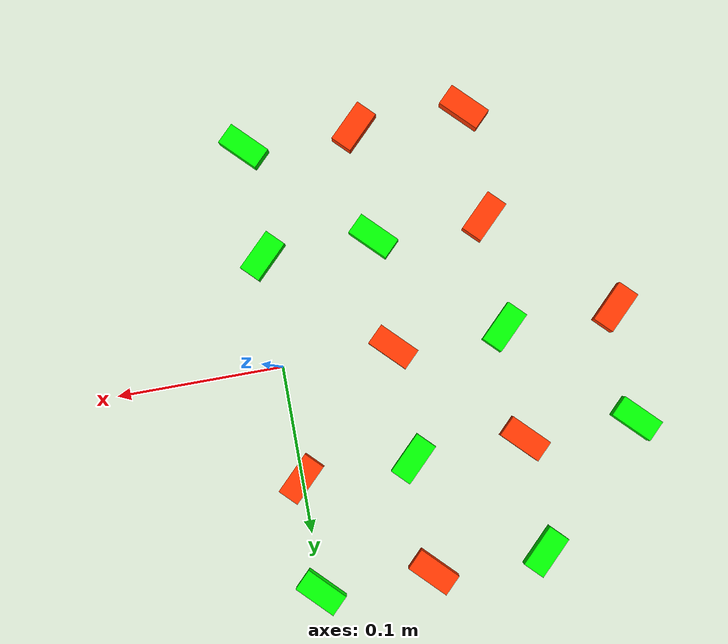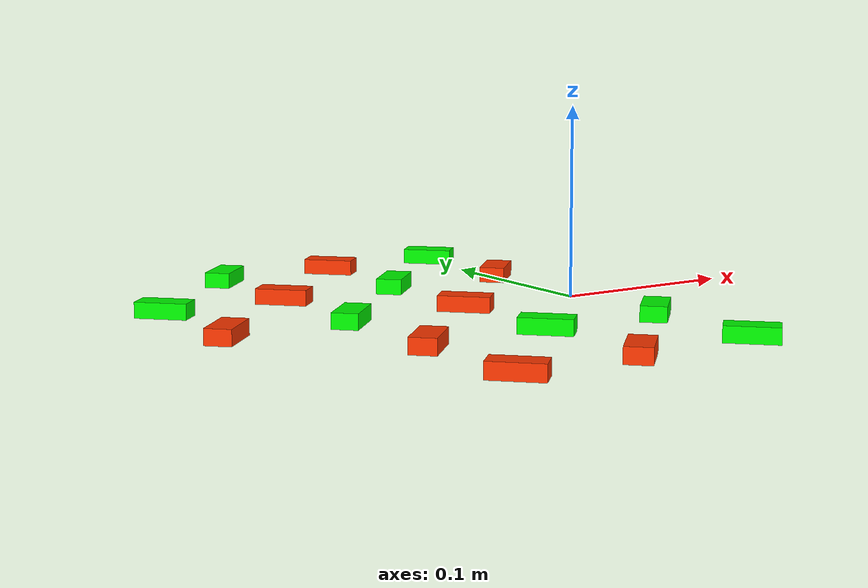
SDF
<?xml version='1.0'?>
<sdf version='1.6'>
  <model name='bekkering'>
    <link name='link_7'>
      <pose frame=''>0 0 0 0 -0 0</pose>
        <visual name='visual'>
          <geometry>
          <mesh>
            <uri>model://bekkering/meshes/bekkering_small_v1.dae</uri>
            <scale>0.01 0.01 0.01</scale>
          </mesh>
        </geometry>
      </visual>
      <collision name='collision'>
        <laser_retro>0</laser_retro>
        <max_contacts>10</max_contacts>
        <pose frame=''>0 0 0 0 0 0</pose>
        <geometry>
          <mesh>
            <uri>model://bekkering/meshes/bekkering_small_v1.dae</uri>
            <scale>1 1 1</scale>
          </mesh>
        </geometry>
       </collision>
    </link>
    <static>1</static>
    <allow_auto_disable>1</allow_auto_disable>
  </model>
</sdf>
